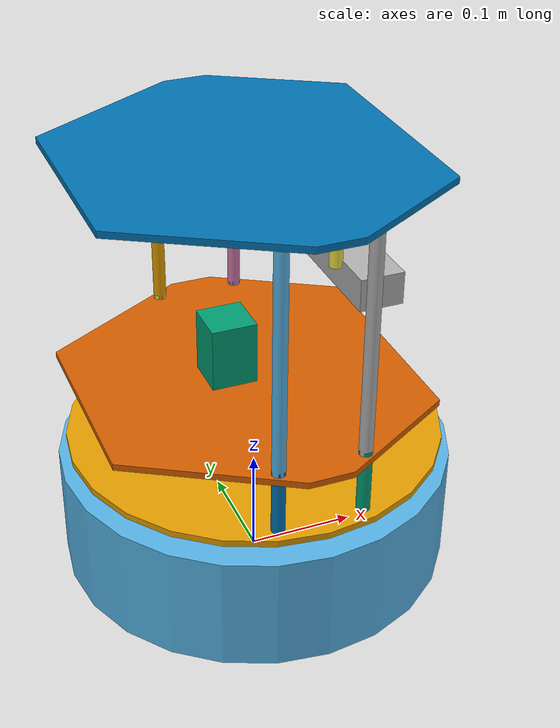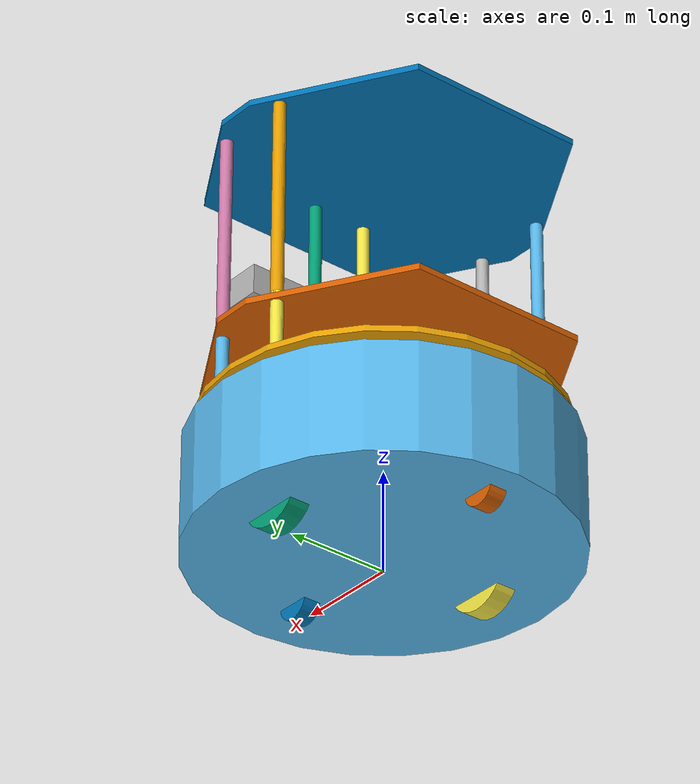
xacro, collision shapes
<?xml version="1.0"?>
<!--
    - Base      :kobuki
    - Stacks    :hexagons
    - 3d Sensor :astra
-->
<robot name="turtlebot" xmlns:xacro="http://ros.org/wiki/xacro">

  <xacro:include filename="$(find chris_ros_turtlebot2)/urdf/turtlebot_common_library.urdf.xacro" />
  <xacro:include filename="$(find chris_ros_turtlebot2)/urdf/kobuki.urdf.xacro" />
  <xacro:include filename="$(find chris_ros_turtlebot2)/urdf/stacks/hexagons.urdf.xacro"/>
  <xacro:include filename="$(find chris_ros_turtlebot2)/urdf/sensors/astra.urdf.xacro"/>
  <xacro:include filename="$(find chris_ros_turtlebot2)/urdf/sensors/hokuyo_urg04.urdf.xacro"/>

  <xacro:kobuki/>
  <xacro:stack_hexagons parent="base_link"/>
  <xacro:sensor_astra   parent="base_link"/>

  <joint name="hokuyo_base_joint" type="fixed">
    <axis xyz="0 0 1" />
    <origin xyz="-0.0254 0.0 0.208" rpy="0 0 0"/>
    <parent link="base_footprint"/>
    <child link="hokuyo_base_link"/>
  </joint>

  <xacro:hokuyo_urg04 lidar_name="hokuyo"/>

</robot>

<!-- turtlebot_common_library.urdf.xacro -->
<!--
  The common turtlebot library of xacros for easy reference
 -->
<robot xmlns:xacro="http://ros.org/wiki/xacro">
  <!-- General -->
  <xacro:include filename="$(find chris_ros_turtlebot2)/urdf/common_properties.urdf.xacro"/>
  <xacro:include filename="$(find chris_ros_turtlebot2)/urdf/turtlebot_properties.urdf.xacro"/>
</robot>

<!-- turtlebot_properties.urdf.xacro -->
<robot xmlns:xacro="http://ros.org/wiki/xacro">
  <!--
    These properties must be observed by any machine
    that wants to be defined as a turtlebot. Refer
    to the REP for more details.

    http://www.ros.org/reps/rep-0119.html
   -->

	<xacro:property name="cam_px" value="0.087" />
	<xacro:property name="cam_pz" value="0.2870" />
	<xacro:property name="cam_or" value="${M_PI}" />
	<xacro:property name="cam_op" value="0" />
	<xacro:property name="cam_oy" value="0" />
</robot>

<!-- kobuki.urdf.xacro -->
<robot name="kobuki" xmlns:xacro="http://ros.org/wiki/xacro">
  <xacro:include filename="$(find chris_ros_turtlebot2)/urdf/common_properties.urdf.xacro"/>
  <xacro:include filename="$(find chris_ros_turtlebot2)/urdf/kobuki_gazebo.urdf.xacro"/>

  <!-- Kobuki -->
  <xacro:macro name="kobuki">
    <link name="base_footprint"/>
    <joint name="base_joint" type="fixed">
      <origin xyz="0 0 0.0102" rpy="0 0 0" />
      <parent link="base_footprint"/>
      <child link="base_link" />
    </joint>
    <link name="base_link">
      <visual>
        <geometry>
          <!-- new mesh -->
          <mesh filename="package://chris_ros_turtlebot2/models/meshes/main_body.dae" />
        </geometry>
        <origin xyz="0.001 0 0.05199" rpy="0 0 0"/>
      </visual>
      <collision name="base">
        <geometry>
          <cylinder length="0.10938" radius="0.178"/>
        </geometry>
        <origin xyz="0.0 0 0.05949" rpy="0 0 0"/>
      </collision>
      <inertial>
        <!-- COM experimentally determined -->
        <origin xyz="0.01 0 0"/>
        <mass value="2.4"/> <!-- 2.4/2.6 kg for small/big battery pack -->
        <inertia ixx="0.019995" ixy="0.0" ixz="0.0"
                 iyy="0.019995" iyz="0.0"
                 izz="0.03675" />
      </inertial>
    </link>

    <joint name="wheel_left_joint" type="continuous">
      <parent link="base_link"/>
      <child link="wheel_left_link"/>
      <origin xyz="0.0 ${0.23/2} 0.0250" rpy="${-M_PI/2} 0 0"/>
      <axis xyz="0 0 1"/>
    </joint>
    <link name="wheel_left_link">
      <visual>
        <geometry>
          <mesh filename="package://chris_ros_turtlebot2/models/meshes/wheel.dae"/>
        </geometry>
        <origin xyz="0 0 0" rpy="0 0 0"/>
      </visual>
      <collision>
        <geometry>
          <cylinder length="0.0206" radius="0.035"/>
        </geometry>
        <origin rpy="0 0 0" xyz="0 0 0"/>
      </collision>
      <inertial>
        <mass value="0.01" />
        <origin xyz="0 0 0" />
        <inertia ixx="0.001" ixy="0.0" ixz="0.0"
                 iyy="0.001" iyz="0.0"
                 izz="0.001" />
      </inertial>
    </link>

    <joint name="wheel_right_joint" type="continuous">
      <parent link="base_link"/>
      <child link="wheel_right_link"/>
      <origin xyz="0.0 -${0.23/2} 0.0250" rpy="${-M_PI/2} 0 0"/>
      <axis xyz="0 0 1"/>
    </joint>
    <link name="wheel_right_link">
      <visual>
        <geometry>
          <mesh filename="package://chris_ros_turtlebot2/models/meshes/wheel.dae"/>
        </geometry>
        <origin xyz="0 0 0" rpy="0 0 0"/>
      </visual>
      <collision>
        <geometry>
          <cylinder length="0.0206" radius="0.035"/>
        </geometry>
        <origin rpy="0 0 0" xyz="0 0 0"/>
      </collision>
      <inertial>
        <mass value="0.01" />
        <origin xyz="0 0 0" />
        <inertia ixx="0.001" ixy="0.0" ixz="0.0"
                 iyy="0.001" iyz="0.0"
                 izz="0.001" />
      </inertial>
    </link>

    <joint name="caster_front_joint" type="fixed">
      <parent link="base_link"/>
      <child link="caster_front_link"/>
      <origin xyz="0.115 0.0 0.007" rpy="${-M_PI/2} 0 0"/>
    </joint>
    <link name="caster_front_link">
      <collision>
        <geometry>
          <cylinder length="0.0176" radius="0.017"/>
        </geometry>
        <origin rpy="0 0 0" xyz="0 0 0"/>
      </collision>
      <inertial>
        <mass value="0.01" />
        <origin xyz="0 0 0" />
        <inertia ixx="0.001" ixy="0.0" ixz="0.0"
                 iyy="0.001" iyz="0.0"
                 izz="0.001" />
      </inertial>
    </link>

    <joint name="caster_back_joint" type="fixed">
      <parent link="base_link"/>
      <child link="caster_back_link"/>
      <origin xyz="-0.135 0.0 0.009" rpy="${-M_PI/2} 0 0"/>
    </joint>
    <link name="caster_back_link">
      <collision>
        <geometry>
          <cylinder length="0.0176" radius="0.017"/>
        </geometry>
        <origin rpy="0 0 0" xyz="0 0 0"/>
      </collision>
      <inertial>
        <mass value="0.01" />
        <origin xyz="0 0 0" />
        <inertia ixx="0.001" ixy="0.0" ixz="0.0"
                 iyy="0.001" iyz="0.0"
                 izz="0.001" />
      </inertial>
    </link>

    <!-- Kobuki sensors -->
    <joint name="gyro_joint" type="fixed">
      <axis xyz="0 1 0"/>
      <origin xyz="0.056 0.062 0.0202" rpy="0 0 0"/>
      <parent link="base_link"/>
      <child link="gyro_link"/>
    </joint>
    <link name="gyro_link">
      <inertial>
        <mass value="0.001"/>
        <origin xyz="0 0 0" rpy="0 0 0"/>
        <inertia ixx="0.0001" ixy="0" ixz="0"
                 iyy="0.000001" iyz="0"
                 izz="0.0001"/>
      </inertial>
    </link>

    <joint name="cliff_sensor_left_joint" type="fixed">
      <origin xyz="0.08734 0.13601 0.0214" rpy="0 ${M_PI/2} 0" />
      <parent link="base_link"/>
      <child link="cliff_sensor_left_link" />
    </joint>
    <link name="cliff_sensor_left_link">
      <inertial>
        <mass value="0.0001" />
        <origin xyz="0 0 0" />
        <inertia ixx="0.0001" ixy="0.0" ixz="0.0"
                 iyy="0.0001" iyz="0.0"
                 izz="0.0001" />
      </inertial>
    </link>

    <joint name="cliff_sensor_right_joint" type="fixed">
      <origin xyz="0.085 -0.13601 0.0214" rpy="0 ${M_PI/2} 0" />
      <parent link="base_link"/>
      <child link="cliff_sensor_right_link" />
    </joint>
    <link name="cliff_sensor_right_link">
      <inertial>
        <mass value="0.0001" />
        <origin xyz="0 0 0" />
        <inertia ixx="0.0001" ixy="0.0" ixz="0.0"
                 iyy="0.0001" iyz="0.0"
                 izz="0.0001" />
      </inertial>
    </link>

    <joint name="cliff_sensor_front_joint" type="fixed">
      <origin xyz="0.156 0.00 0.0214" rpy="0 ${M_PI/2} 0" />
      <parent link="base_link"/>
      <child link="cliff_sensor_front_link" />
    </joint>
    <link name="cliff_sensor_front_link">
      <inertial>
        <mass value="0.0001" />
        <origin xyz="0 0 0" />
        <inertia ixx="0.0001" ixy="0.0" ixz="0.0"
                 iyy="0.0001" iyz="0.0"
                 izz="0.0001" />
      </inertial>
    </link>

    <!-- Kobuki Gazebo simulation details -->
    <xacro:kobuki_sim/>

  </xacro:macro>
</robot>

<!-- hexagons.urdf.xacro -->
<!--
  Hexagon stacks
 -->
<robot name="stack_hexagons" xmlns:xacro="http://ros.org/wiki/xacro">
  <xacro:include filename="$(find chris_ros_turtlebot2)/urdf/common_properties.urdf.xacro"/>

  <!-- Xacro properties -->
  <xacro:property name="M_SCALE" value="0.001"/>

  <!-- Xacro macros -->
  <!-- Pole macros -->
  <xacro:macro name="stack_bottom_pole" params="parent number x_loc y_loc z_loc roll=0.0 pitch=0.0 yaw=0.0">
    <joint name="pole_bottom_${number}_joint" type="fixed">
      <origin xyz="${x_loc} ${y_loc} ${z_loc}" rpy="${roll} ${pitch} ${yaw}"/>
      <parent link="${parent}"/>
      <child link="pole_bottom_${number}_link"/>
    </joint>
    <link name="pole_bottom_${number}_link">
      <visual>
        <origin xyz="0 0 0" rpy="0 0 0"/>
        <geometry>
          <mesh filename="package://chris_ros_turtlebot2/models/meshes/stacks/hexagons/pole_bottom.dae"/>
        </geometry>
      </visual>
      <collision>
        <origin xyz="0 0 0" rpy="0 0 0"/>
        <geometry>
          <cylinder length="0.0492" radius="0.006"/>
        </geometry>
      </collision>
      <inertial>
        <mass value="0.008"/>
        <origin xyz="0 0 0" rpy="0 0 0"/>
        <inertia ixx="0.000001686" ixy="0.0" ixz="0.0"
                 iyy="0.000001686" iyz="0.0"
                 izz="0.000000144"/>
      </inertial>
    </link>
  </xacro:macro>

  <xacro:macro name="stack_middle_pole" params="parent number x_loc y_loc z_loc roll=0.0 pitch=0.0 yaw=0.0">
    <joint name="pole_middle_${number}_joint" type="fixed">
      <origin xyz="${x_loc} ${y_loc} ${z_loc}" rpy="${roll} ${pitch} ${yaw}" />
      <parent link="${parent}"/>
      <child link="pole_middle_${number}_link"/>
    </joint>
    <link name="pole_middle_${number}_link">
      <visual>
        <origin xyz="0 0 0" rpy="0 ${M_PI} 0"/>
        <geometry>
          <mesh filename="package://chris_ros_turtlebot2/models/meshes/stacks/hexagons/pole_middle.dae"/>
        </geometry>
      </visual>
      <collision>
        <origin xyz="0 0 0" rpy="0 0 0"/>
        <geometry>
          <cylinder length="0.0608" radius="0.006"/>
        </geometry>
      </collision>
      <inertial>
        <mass value="0.012"/>
        <origin xyz="0 0 0"/>
        <inertia ixx="0.000003805" ixy="0.0" ixz="0.0"
                 iyy="0.000003805" iyz="0.0"
                 izz="0.000000216"/>
      </inertial>
    </link>
  </xacro:macro>

  <xacro:macro name="stack_top_pole" params="parent number x_loc y_loc z_loc roll=0.0 pitch=0.0 yaw=0.0">
    <joint name="pole_top_${number}_joint" type="fixed">
      <origin xyz="${x_loc} ${y_loc} ${z_loc}" rpy="${roll} ${pitch} ${yaw}"/>
      <parent link="${parent}"/>
      <child link="pole_top_${number}_link"/>
    </joint>
    <link name="pole_top_${number}_link">
      <visual>
        <origin xyz=" 0 0 0" rpy="0 0 0"/>
        <geometry>
          <mesh filename="package://chris_ros_turtlebot2/models/meshes/stacks/hexagons/pole_top.dae"/>
        </geometry>
      </visual>
      <collision>
        <origin xyz="0 0 0" rpy="0 0 0"/>
        <geometry>
          <cylinder length="0.2032" radius="0.006"/>
        </geometry>
      </collision>
      <inertial>
        <mass value="0.060"/>
        <origin xyz="0 0 0"/>
        <inertia ixx="0.000206991" ixy="0.0" ixz="0.0"
                 iyy="0.000206991" iyz="0.0"
                 izz="0.000001080"/>
      </inertial>
    </link>
  </xacro:macro>

  <xacro:macro name="stack_3d_sensor_pole" params="parent number x_loc y_loc z_loc roll=0.0 pitch=0.0 yaw=0.0">
    <joint name="pole_kinect_${number}_joint" type="fixed">
      <origin xyz="${x_loc} ${y_loc} ${z_loc}" rpy="${roll} ${pitch} ${yaw}"/>
      <parent link="${parent}"/>
      <child link="pole_kinect_${number}_link"/>
    </joint>
    <link name="pole_kinect_${number}_link">
      <visual>
        <origin xyz="0 0 0" rpy="0 0 0"/>
        <geometry>
          <mesh filename="package://chris_ros_turtlebot2/models/meshes/stacks/hexagons/pole_kinect.dae" />
        </geometry>
      </visual>
      <collision>
        <origin xyz="0 0 0" rpy="0 0 0"/>
        <geometry>
          <cylinder length="0.0936" radius="0.006"/>
        </geometry>
      </collision>
      <inertial>
        <mass value="0.020"/>
        <origin xyz="0 0 0"/>
        <inertia ixx="0.000014782" ixy="0.0" ixz="0.0"
                 iyy="0.000014782" iyz="0.0"
                 izz="0.000000360"/>
      </inertial>
    </link>
  </xacro:macro>

  <xacro:macro name="stack_hexagons" params="parent">
    <xacro:stack_bottom_pole parent="${parent}" number="0" x_loc= "0.120" y_loc= "0.082" z_loc="0.1028"/>
    <xacro:stack_bottom_pole parent="${parent}" number="1" x_loc= "0.055" y_loc= "0.120" z_loc="0.1028"/>
    <xacro:stack_bottom_pole parent="${parent}" number="2" x_loc="-0.055" y_loc= "0.120" z_loc="0.1028"/>
    <xacro:stack_bottom_pole parent="${parent}" number="3" x_loc= "0.120" y_loc="-0.082" z_loc="0.1028"/>
    <xacro:stack_bottom_pole parent="${parent}" number="4" x_loc= "0.055" y_loc="-0.120" z_loc="0.1028"/>
    <xacro:stack_bottom_pole parent="${parent}" number="5" x_loc="-0.055" y_loc="-0.120" z_loc="0.1028"/>

    <joint name="plate_bottom_joint" type="fixed">
      <origin xyz="0.02364 0.0 0.1306" rpy="0 0 0"/>
      <parent link="${parent}"/>
      <child link="plate_bottom_link"/>
    </joint>
    <link name="plate_bottom_link">
      <visual>
        <origin xyz="0 0 0" rpy="0 0 0"/>
        <geometry>
          <mesh filename="package://chris_ros_turtlebot2/models/meshes/stacks/hexagons/plate_bottom.dae"/>
        </geometry>
      </visual>
      <collision>
        <origin xyz="-0.02364 0 0" rpy="0 0 0"/>
        <geometry>
          <cylinder length="0.006" radius="0.170"/>
        </geometry>
      </collision>
      <inertial>
        <mass value="0.520" />
        <origin xyz="0 0 0" />
        <inertia ixx="0.003328" ixy="0.0" ixz="0.0"
                 iyy="0.003328" iyz="0.0"
                 izz="0.006656" />
      </inertial>
    </link>

    <xacro:stack_middle_pole parent="${parent}" number="0" x_loc= "0.0381" y_loc= "0.1505" z_loc="0.1640"/>
    <xacro:stack_middle_pole parent="${parent}" number="1" x_loc= "0.0381" y_loc="-0.1505" z_loc="0.1640"/>
    <xacro:stack_middle_pole parent="${parent}" number="2" x_loc="-0.0381" y_loc= "0.1505" z_loc="0.1640"/>
    <xacro:stack_middle_pole parent="${parent}" number="3" x_loc="-0.0381" y_loc="-0.1505" z_loc="0.1640"/>

    <joint name="plate_middle_joint" type="fixed">
      <origin xyz="-0.01364 0.0 0.1874" rpy="0 0 0"/>
      <parent link="${parent}"/>
      <child link="plate_middle_link"/>
    </joint>
    <link name="plate_middle_link">
      <visual>
        <origin xyz="0 0 0" rpy="0 0 0"/>
        <geometry>
          <mesh filename="package://chris_ros_turtlebot2/models/meshes/stacks/hexagons/plate_middle.dae"/>
        </geometry>
      </visual>
      <collision>
        <origin xyz="0.01364 0.0 0.0" rpy="0 0 0"/>
        <geometry>
          <mesh filename="package://chris_ros_turtlebot2/models/meshes/stacks/hexagons/plate_simple.stl"
                scale="${M_SCALE} ${M_SCALE} ${M_SCALE}"/>
        </geometry>
      </collision>
      <inertial>
        <mass value="0.520" />
        <origin xyz="0 0 0" />
        <inertia ixx="0.003328" ixy="0.0" ixz="0.0"
                 iyy="0.003328" iyz="0.0"
                 izz="0.006656" />
      </inertial>
    </link>

    <xacro:stack_top_pole parent="${parent}" number="0" x_loc= "0.0381" y_loc= "0.1505" z_loc="0.2920"/>
    <xacro:stack_top_pole parent="${parent}" number="1" x_loc= "0.0381" y_loc="-0.1505" z_loc="0.2920"/>
    <xacro:stack_top_pole parent="${parent}" number="2" x_loc="-0.0381" y_loc= "0.1505" z_loc="0.2920"/>
    <xacro:stack_top_pole parent="${parent}" number="3" x_loc="-0.0381" y_loc="-0.1505" z_loc="0.2920"/>
    <xacro:stack_3d_sensor_pole parent="${parent}" number="0" x_loc="0.0634" y_loc= "0.028" z_loc="0.3420"/>
    <xacro:stack_3d_sensor_pole parent="${parent}" number="1" x_loc="0.0634" y_loc="-0.028" z_loc="0.3420"/>

    <joint name="plate_top_joint" type="fixed">
      <origin xyz="-0.01364 0.0  0.3966" rpy="0 0 0"/>
      <parent link="${parent}"/>
      <child link="plate_top_link"/>
    </joint>
    <link name="plate_top_link">
      <visual>
        <origin xyz="0 0 0" rpy="0 0 0"/>
        <geometry>
          <mesh filename="package://chris_ros_turtlebot2/models/meshes/stacks/hexagons/plate_top.dae"/>
        </geometry>
      </visual>
      <collision>
        <origin xyz="0.01364 0 0" rpy="0 0 0"/>
        <geometry>
          <mesh filename="package://chris_ros_turtlebot2/models/meshes/stacks/hexagons/plate_simple.stl"
                scale="${M_SCALE} ${M_SCALE} ${M_SCALE}"/>
        </geometry>
      </collision>
      <inertial>
        <mass value="0.520"/>
        <origin xyz="0 0 0"/>
        <inertia ixx="0.003328" ixy="0.0" ixz="0.0"
                 iyy="0.003328" iyz="0.0"
                 izz="0.006656" />
      </inertial>
    </link>
  </xacro:macro>
</robot>

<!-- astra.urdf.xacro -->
<robot name="sensor_astra" xmlns:xacro="http://ros.org/wiki/xacro">
  <xacro:include filename="$(find chris_ros_turtlebot2)/urdf/turtlebot_gazebo.urdf.xacro"/>
  <xacro:include filename="$(find chris_ros_turtlebot2)/urdf/turtlebot_properties.urdf.xacro"/>

  <!-- Xacro properties -->
  <xacro:property name="astra_cam_py" value="-0.0125"/>
  <xacro:property name="astra_depth_rel_rgb_py" value="0.0250" />
  <xacro:property name="astra_cam_rel_rgb_py"   value="-0.0250" />
  <xacro:property name="astra_dae_display_scale"   value="0.6" /> <!-- was 1.0 -->
  <!-- Parameterised in part by the values in turtlebot_properties.urdf.xacro -->
  <xacro:macro name="sensor_astra" params="parent">
    <joint name="camera_rgb_joint" type="fixed">
      <origin xyz="${cam_px} ${astra_cam_py} ${cam_pz}"
              rpy="${cam_or} ${cam_op} ${cam_oy}"/>
      <parent link="${parent}"/>
      <child link="camera_rgb_frame" />
    </joint>
    <link name="camera_rgb_frame"/>

    <joint name="camera_rgb_optical_joint" type="fixed">
      <origin xyz="0 0 0" rpy="${-M_PI/2} 0 ${-M_PI/2}" />
      <parent link="camera_rgb_frame" />
      <child link="camera_rgb_optical_frame" />
    </joint>
    <link name="camera_rgb_optical_frame"/>

    <joint name="camera_joint" type="fixed">
      <origin xyz="0 ${astra_cam_rel_rgb_py} 0"
              rpy="0 0 0"/>
      <parent link="camera_rgb_frame"/>
      <child link="camera_link"/>
    </joint>
    <link name="camera_link">
      <visual>
        <origin xyz="-0.04 0.02 -0.01" rpy="${M_PI/2} 0 ${M_PI/2}"/>
        <geometry>
          <mesh filename="package://chris_ros_turtlebot2/models/meshes/sensors/astra.dae" scale="${astra_dae_display_scale} ${astra_dae_display_scale} ${astra_dae_display_scale}"/>
        </geometry>
      </visual>
      <collision>
        <origin xyz="0.0 0.0 0.0" rpy="0 0 0" />
        <geometry>
        <box size="0.0400 0.1650 0.0300"/>
      </geometry>
      </collision>
      <inertial>
        <mass value="0.564" />
        <origin xyz="0 0 0" />
        <inertia ixx="0.003881243" ixy="0.0" ixz="0.0"
                 iyy="0.000498940" iyz="0.0"
                 izz="0.003879257" />
      </inertial>
    </link>

    <joint name="camera_depth_joint" type="fixed">
      <origin xyz="0 ${astra_depth_rel_rgb_py} 0" rpy="0 0 0" />
      <parent link="camera_rgb_frame" />
      <child link="camera_depth_frame" />
    </joint>
    <link name="camera_depth_frame"/>

    <joint name="camera_depth_optical_joint" type="fixed">
      <origin xyz="0 0 0" rpy="${-M_PI/2} 0 ${-M_PI/2}" />
      <parent link="camera_depth_frame" />
      <child link="camera_depth_optical_frame" />
    </joint>
    <link name="camera_depth_optical_frame"/>

    <!-- RGBD sensor for simulation, same as Kinect -->
    <xacro:turtlebot_sim_3dsensor/>

  </xacro:macro>
</robot>

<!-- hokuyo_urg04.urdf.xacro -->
<!-- Hokoyu URG-04 lidar model (Simple) -->
<xacro:robot name="hokuyo_urg04" xmlns:xacro="http://ros.org/wiki/xacro">
  <xacro:macro name="hokuyo_urg04" params="lidar_name">

  <!-- Constants for robot dimensions -->
  <xacro:property name="PI" value="3.1415926535897931"/>
  <xacro:property name="mass" value="0.25" /> <!-- kg -->
  <xacro:property name="lx"   value="0.046"  /> <!-- size of lidar base -->
  <xacro:property name="ly"   value="0.046"  /> <!-- size of lidar base -->
  <xacro:property name="lz"   value="0.041"  /> <!-- size of lidar base -->
  <xacro:property name="rhoz" value="0.020"  /> <!-- size of lidar base -->
  <xacro:property name="hz"   value="0.029"  /> <!-- size of lidar base -->
  <xacro:property name="mz"   value="0.0205" /> <!-- size of lidar base -->

  <!-- Import Rviz colors -->
  <xacro:include filename="$(find chris_ros_turtlebot2)/urdf/common_properties.urdf.xacro" />

  <!-- Import all Gazebo-customization elements, including Gazebo colors -->
  <xacro:include filename="$(find chris_ros_turtlebot2)/urdf/sensors/hokuyo_urg04_gazebo.urdf.xacro" />

  <!-- Hokuyo Laser -->
  <link name="${lidar_name}_base_link">
    <collision name="${lidar_name}_base_link_collision">
      <origin xyz="0 0 ${lz/2.0}" rpy="0 0 0"/>
      <geometry>
        <box size="0.041 0.041 0.060"/>
      </geometry>
    </collision>

    <visual>
      <origin xyz="0 0 0.0175" rpy="0 0 0"/>
      <geometry>
            <mesh filename="package://chris_ros_turtlebot2/models/meshes/sensors/hokuyo.dae"/>
      </geometry>
    </visual>

    <inertial>
      <mass value="${mass}" />
      <origin xyz="0 0 0" rpy="0 0 0"/>
      <inertia ixx="1e-6" ixy="0" ixz="0" iyy="1e-6" iyz="0" izz="1e-6" />
    </inertial>
  </link>

  <joint name="${lidar_name}_laser_joint" type="fixed">
    <axis xyz="0 0 1" />
    <origin xyz="0 0 ${lz/2+mz}" rpy="0 0 0"/>
    <parent link="${lidar_name}_base_link"/>
    <child link="${lidar_name}_laser"/>
  </joint>

  <!-- Hokuyo Laser -->
  <link name="${lidar_name}_laser">
    <collision name="${lidar_name}_laser_collision">
      <origin xyz="0 0 ${-(hz-mz)}" rpy="0 0 0"/>
      <geometry>
            <cylinder radius="${rhoz}" length="${hz}" />
      </geometry>
    </collision>

  </link>

  <!-- Simulation sensors -->
  <xacro:hokuyo_urg04_sim/>

  </xacro:macro>
</xacro:robot>
